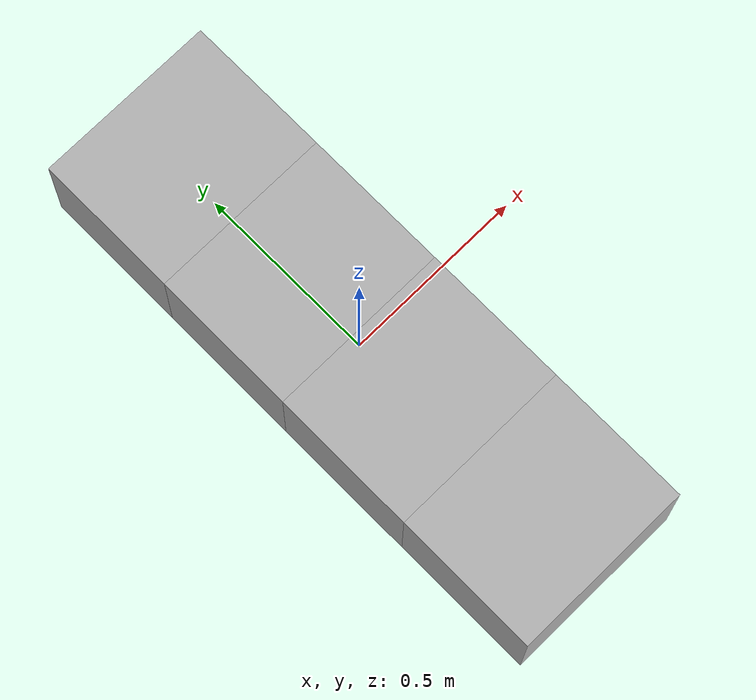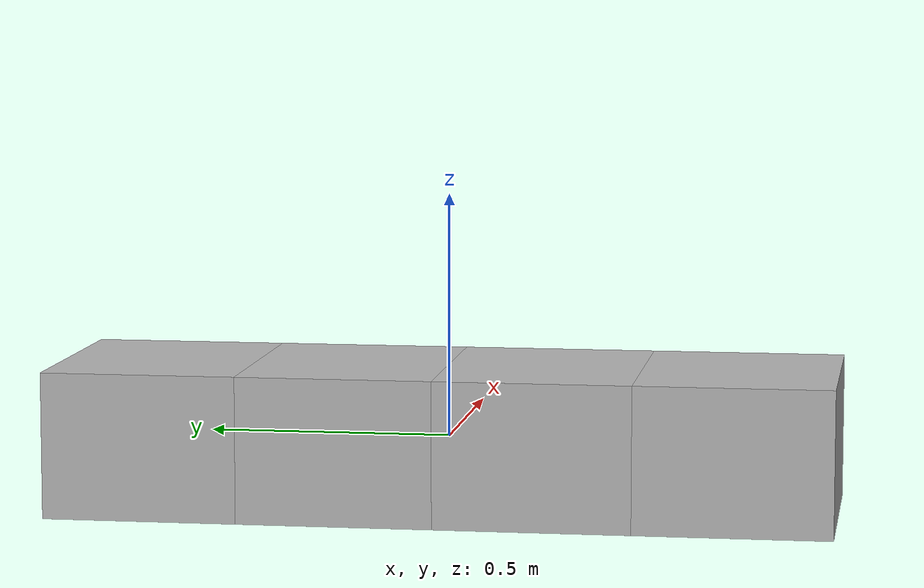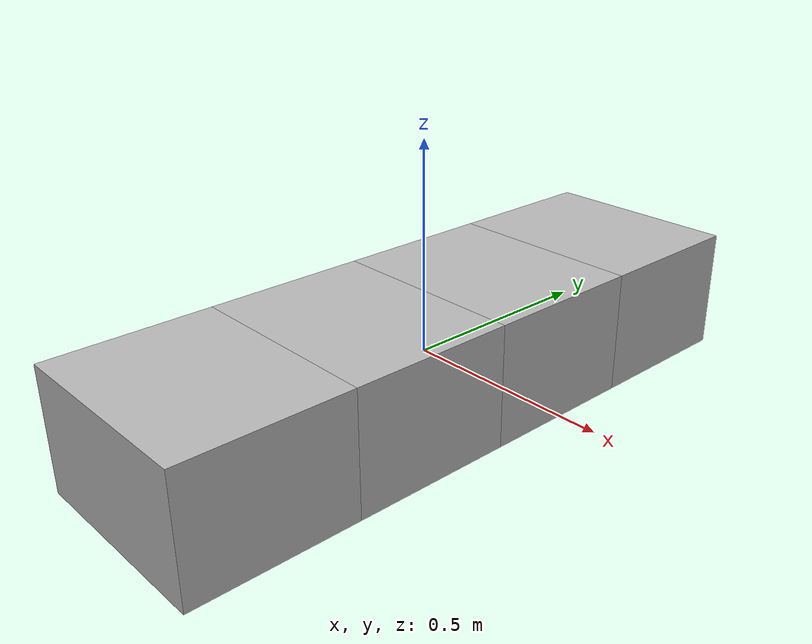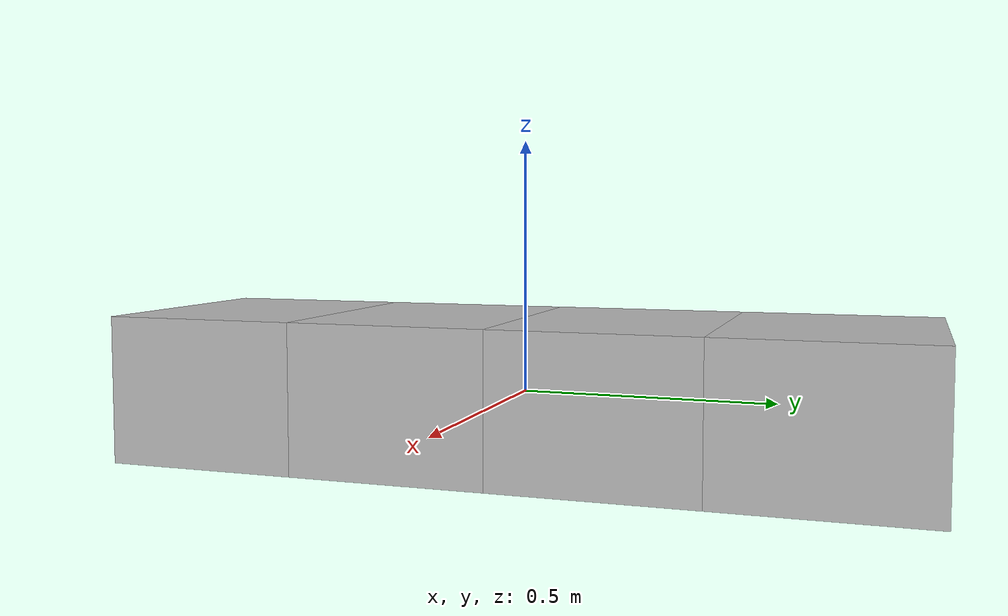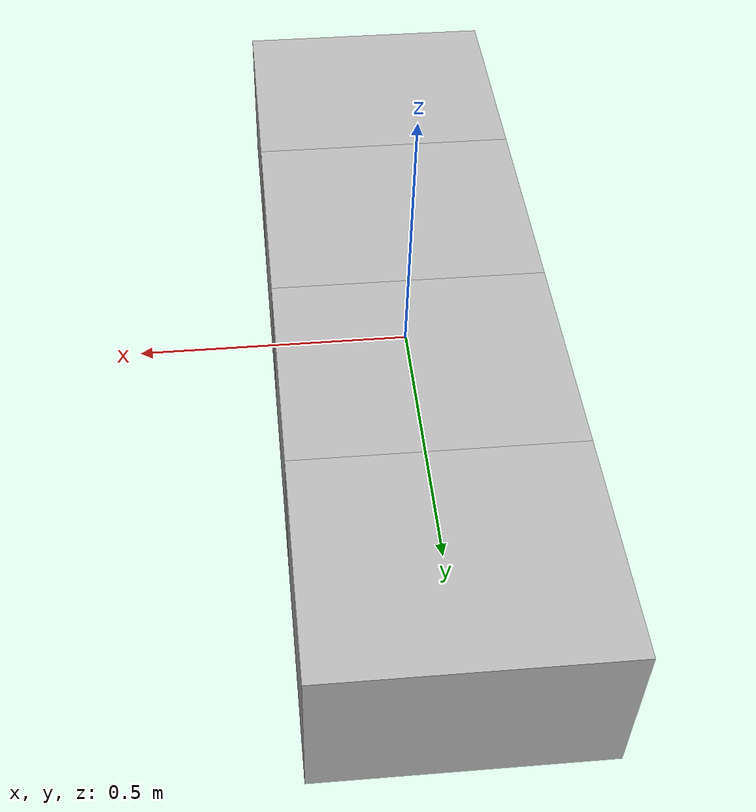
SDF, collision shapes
<?xml version='1.0'?>
<sdf version='1.7'>
    <model name='cardboard_box_group'>
        <pose>0 0 0 0 0 0</pose>
        <include>
            <uri>model://cardboard_box</uri>
            <name>box_1</name>
            <pose frame="">0.0 0.6 0 0 0 0</pose>
        </include>

        <include>
            <uri>model://cardboard_box</uri>
            <name>box_2</name>
            <pose frame="">0.0 0.2 0 0 0 0</pose>
        </include>

        <include>
            <uri>model://cardboard_box</uri>
            <name>box_3</name>
            <pose frame="">0.0 -0.2 0 0 0 0</pose>
        </include>

        <include>
            <uri>model://cardboard_box</uri>
            <name>box_4</name>
            <pose frame="">0.0 -0.6 0 0 0 0</pose>
        </include>
    </model>
</sdf>

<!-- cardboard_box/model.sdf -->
<sdf version="1.6">
  <model name="cardboard_box">
    <pose>0 0 0.15 0 0 0</pose>
    <link name="link">
      <inertial>
        <mass>2</mass>
        <inertia>
          <ixx>0.041666667</ixx>
          <ixy>0</ixy>
          <ixz>0</ixz>
          <iyy>0.056666667</iyy>
          <iyz>0</iyz>
          <izz>0.068333333</izz>
        </inertia>
      </inertial>
      <collision name="collision">
        <geometry>
          <box>
            <size>0.5 0.4 0.3</size>
          </box>
        </geometry>
        <surface>
          <friction>
            <ode>
              <mu>1.0</mu>
              <mu2>1.0</mu2>
            </ode>
          </friction>
          <contact>
            <ode>
              <kp>10000000.0</kp>
              <kd>1.0</kd>
              <min_depth>0.001</min_depth>
              <max_vel>0.1</max_vel>
            </ode>
          </contact>
        </surface>
      </collision>
      <visual name="visual">
        <pose>0 0 -0.15 0 0 0</pose>
        <geometry>
          <mesh>
            <uri>model://../model_source/models/cardboard_box/meshes/cardboard_box.dae</uri>
            <scale>1.25931896 1.007455168 0.755591376</scale>
          </mesh>
        </geometry>
      </visual>
    </link>
  </model>
</sdf>
